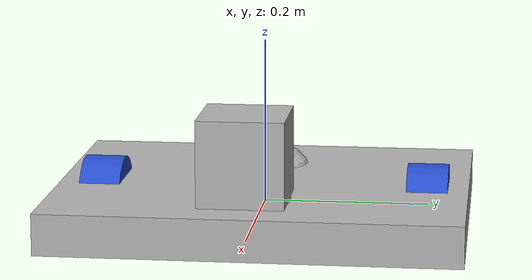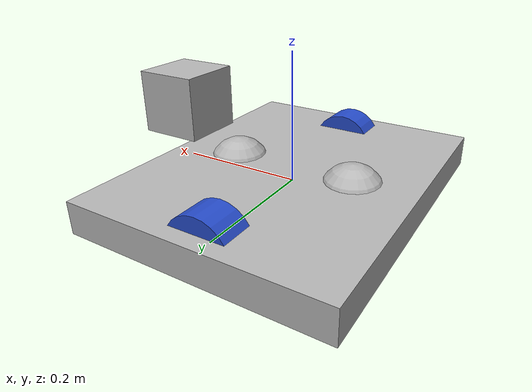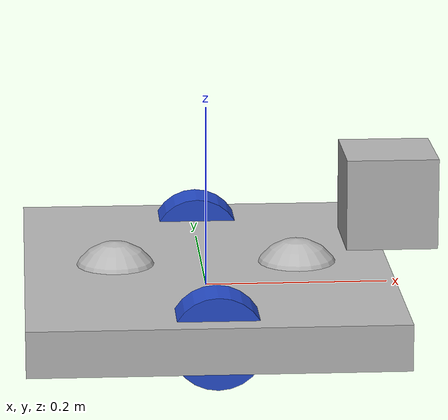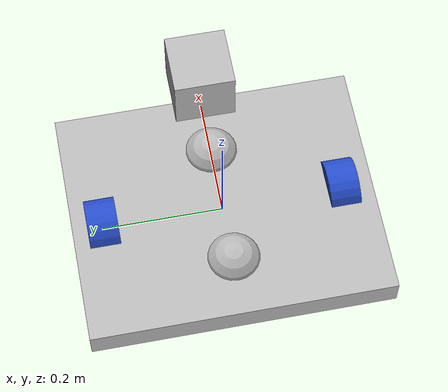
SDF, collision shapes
<sdf version='1.7'>
  <model name='bot'>
    	<link name='base_footprint' />

    	<joint name='base_link_joint' type='fixed'>
      		<parent>base_footprint</parent>
      		<child>base_link</child>
      	</joint>

      <link name='base_link'>
    	<inertial>
        	<pose>2e-06 0 3e-06 0 -0 0</pose>
        	<mass>1.20001</mass>
        	<inertia>
          		<ixx>0.00816222</ixx>
          		<ixy>0</ixy>
          		<ixz>-6.99994e-07</ixz>
          		<iyy>0.0201626</iyy>
          		<iyz>0</iyz>
          		<izz>0.0226014</izz>
        	</inertia>
      </inertial>
      <collision name='base_link_fixed_joint_lump__collision_collision'>
        <pose>0 0 0 0 -0 0</pose>
        <geometry>
          <box>
            <size>0.4 0.5 0.05</size>
          </box>
        </geometry>
      </collision>
      <collision name='base_link_fixed_joint_lump__custer_wheel_collision_1'>
        <pose>-0.1 0 0 0 -0 0</pose>
        <geometry>
          <sphere>
            <radius>0.05</radius>
          </sphere>
        </geometry>
      </collision>
      <collision name='base_link_fixed_joint_lump__custer_wheel2_collision_2'>
        <pose>0.1 0 0 0 -0 0</pose>
        <geometry>
          <sphere>
            <radius>0.05</radius>
          </sphere>
        </geometry>
      </collision>

      <visual name='base_link_fixed_joint_lump__chassis_visual_visual'>
        <pose>-0.205 -0.358 0 1.57 -0 1.57</pose>
        <geometry>
          <mesh>
            <scale>0.001 0.001 0.001</scale>
            <uri>model://waiter/meshes/marses_robot.stl</uri>
          </mesh>
        </geometry>
      </visual>
      <visual name='base_link_fixed_joint_lump__custer_wheel_visual_1'>
        <pose>-0.1 0 0 0 -0 0</pose>
        <geometry>
          <sphere>
            <radius>0.05</radius>
          </sphere>
        </geometry>
      </visual>
      <visual name='base_link_fixed_joint_lump__custer_wheel2_visual_2'>
        <pose>0.1 0 0 0 -0 0</pose>
        <geometry>
          <sphere>
            <radius>0.05</radius>
          </sphere>
        </geometry>
      </visual>

    </link>

    <joint name='lidar_joint' type='fixed'>
      		<pose>0.0 0 0.0 0 -0 0</pose>
      		<parent>base_link</parent>
      		<child>laserscan</child>
    	</joint>

    <link name='laserscan'>
        <pose>0.2 0 0.1 0 0 0</pose>
    	<inertial>
    		<inertia>
          		<ixx>0.001</ixx>
          		<ixy>0.000</ixy>
          		<ixz>0.000</ixz>
          		<iyy>0.001</iyy>
          		<iyz>0.000</iyz>
          		<izz>0.001</izz>
        	</inertia>
        	<mass>0.114</mass>
      	</inertial>
      	<visual name='lidar_sensor_visual'>
        	<geometry>
          		<mesh>
            			<scale>1 1 1</scale>
            			<uri>model://waiter/meshes/hokuyo.dae</uri>
          		</mesh>
        	</geometry>
      	</visual>
        <collision name='base_scan_collision'>
        	<geometry>
          		<box>
            			<size>0.1 0.1 0.1</size>
          		</box>
        	</geometry>
      </collision>
      <sensor type="ray" name="head_hokuyo_sensor">
      <pose>0 0 0 0 0 0</pose>
      <visualize>false</visualize>
      <update_rate>40</update_rate>
      <ray>
        <scan>
          <horizontal>
            <samples>720</samples>
            <resolution>1</resolution>
            <min_angle>-2.000796</min_angle>
            <max_angle>2.000796</max_angle>
          </horizontal>
        </scan>
        <range>
          <min>0.10</min>
          <max>30.0</max>
          <resolution>0.01</resolution>
        </range>
        <noise>
          <type>gaussian</type>
          <mean>0.0</mean>
          <stddev>0.01</stddev>
        </noise>
      </ray>
      <plugin name="base_scan" filename="libgazebo_ros_ray_sensor.so">
        <ros>
              	<remapping>~/out:=scan</remapping>
          </ros>
          <output_type>sensor_msgs/LaserScan</output_type>
          <frame_name>base_scan</frame_name>
          <base_frame_id>base_link</base_frame_id>
      </plugin>
    </sensor>
    </link>

    <joint name='left_wheel_hinge' type='revolute'>
      <pose relative_to='base_link'>0 0.2 0 0 -0 0</pose>
      <parent>base_link</parent>
      <child>left_wheel</child>
      <axis>
        <xyz>0 1 0</xyz>
        <limit>
          <lower>-1e+16</lower>
          <upper>1e+16</upper>
        </limit>
        <dynamics>
          <spring_reference>0</spring_reference>
          <spring_stiffness>0</spring_stiffness>
        </dynamics>
      </axis>
    </joint>

    <link name='left_wheel'>
      <pose relative_to='left_wheel_hinge'>0 0 0 0 -0 0</pose>
      <inertial>
        <pose>0 0 0 0 1.5707 1.5707</pose>
        <mass>1</mass>
        <inertia>
          <ixx>0.005</ixx>
          <ixy>0</ixy>
          <ixz>0</ixz>
          <iyy>0.0025</iyy>
          <iyz>0</iyz>
          <izz>0.0025</izz>
        </inertia>
      </inertial>
      <collision name='left_wheel_fixed_joint_lump__collision_collision'>
        <pose>0 0 0 -1.5707 1.5708 0</pose>
        <geometry>
          <cylinder>
            <length>0.05</length>
            <radius>0.05</radius>
          </cylinder>
        </geometry>
      </collision>
      <visual name='left_wheel_visual_visual'>
        <pose>0 0 0 -1.5707 1.5708 0</pose>
        <geometry>
          <cylinder>
            <length>0.05</length>
            <radius>0.05</radius>
          </cylinder>
        </geometry>
        <material>
          <script>
            <name>Gazebo/Blue</name>
            <uri>file://media/materials/scripts/gazebo.material</uri>
          </script>
        </material>
      </visual>
    </link>

    <joint name='right_wheel_hinge' type='revolute'>
      <pose relative_to='base_link'>0 -0.2 0 0 -0 0</pose>
      <parent>base_link</parent>
      <child>right_wheel</child>
      <axis>
        <xyz>0 1 0</xyz>
        <limit>
          <lower>-1e+16</lower>
          <upper>1e+16</upper>
        </limit>
        <dynamics>
          <spring_reference>0</spring_reference>
          <spring_stiffness>0</spring_stiffness>
        </dynamics>
      </axis>
    </joint>

    <link name='right_wheel'>
      <pose relative_to='right_wheel_hinge'>0 0 0 0 -0 0</pose>
      <inertial>
        <pose>0 0 0 0 1.5707 1.5707</pose>
        <mass>1</mass>
        <inertia>
          <ixx>0.005</ixx>
          <ixy>0</ixy>
          <ixz>0</ixz>
          <iyy>0.0025</iyy>
          <iyz>0</iyz>
          <izz>0.0025</izz>
        </inertia>
      </inertial>
      <collision name='right_wheel_fixed_joint_lump__collision_collision'>
        <pose>0 0 0 -1.5707 1.5708 0</pose>
        <geometry>
          <cylinder>
            <length>0.05</length>
            <radius>0.05</radius>
          </cylinder>
        </geometry>
      </collision>
      <visual name='right_wheel_visual_visual'>
        <pose>0 0 0 -1.5707 1.5708 0</pose>
        <geometry>
          <cylinder>
            <length>0.05</length>
            <radius>0.05</radius>
          </cylinder>
        </geometry>
        <material>
          <script>
            <name>Gazebo/Blue</name>
            <uri>file://media/materials/scripts/gazebo.material</uri>
          </script>
        </material>
      </visual>
    </link>

    <static>0</static>
    <plugin name='differential_drive_controller' filename='libgazebo_ros_diff_drive.so'>
      <updateRate>10</updateRate>
      <left_joint>left_wheel_hinge</left_joint>
      <right_joint>right_wheel_hinge</right_joint>
      <wheel_separation>0.4</wheel_separation>
      <wheel_diameter>0.1</wheel_diameter>
      <wheel_acceleration>1.0</wheel_acceleration>
      <wheel_torque>10</wheel_torque>
      <command_topic>cmd_vel</command_topic>
      <odometry_topic>/odom</odometry_topic>
      <odometry_frame>odom</odometry_frame>
      <robot_baseframe>base_link</robot_baseframe>
      <odometry_source>1</odometry_source>
      <ros>
        <remapping>/cmd_vel:=diff_drive/cmd_vel</remapping>
      </ros>
      <publish_odom>1</publish_odom>
      <publish_odom_tf>1</publish_odom_tf>
      <publish_wheel_tf>0</publish_wheel_tf>
    </plugin>

  </model>
</sdf>
